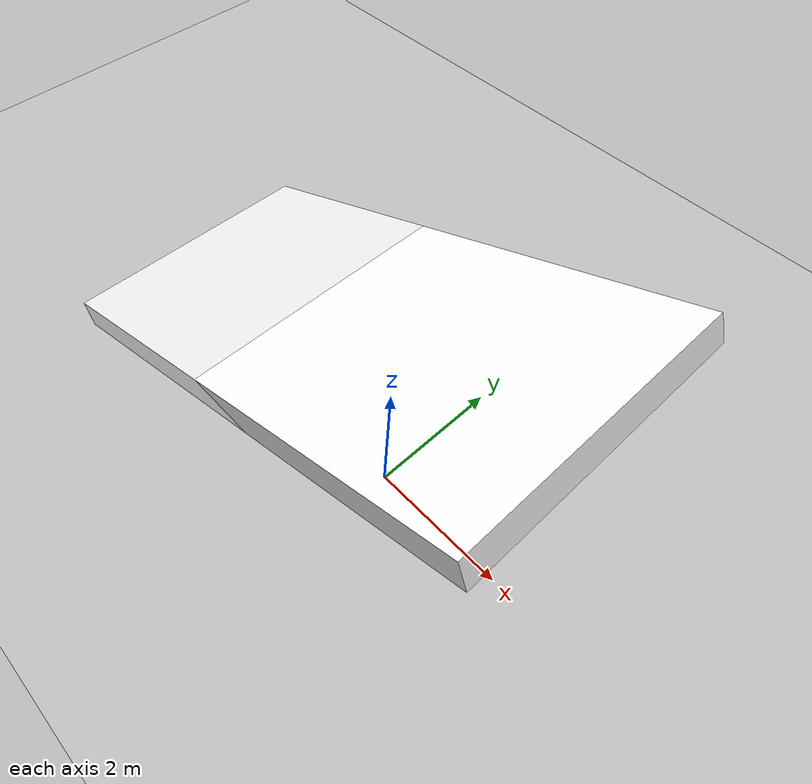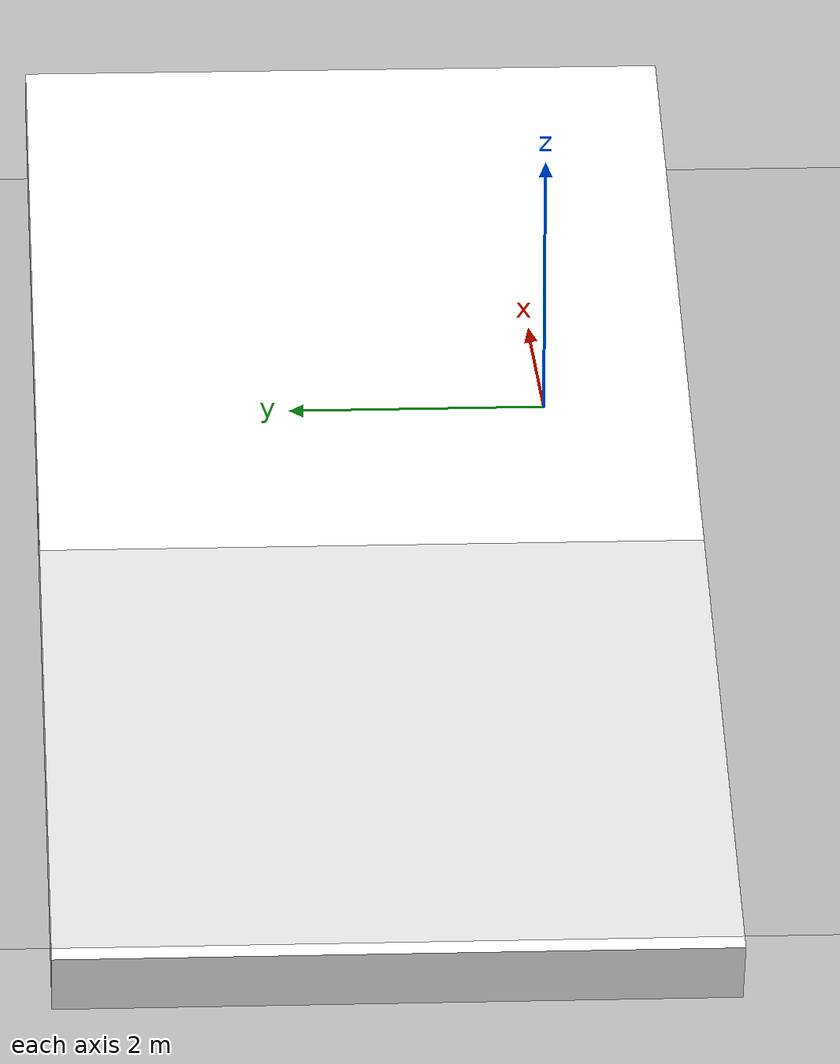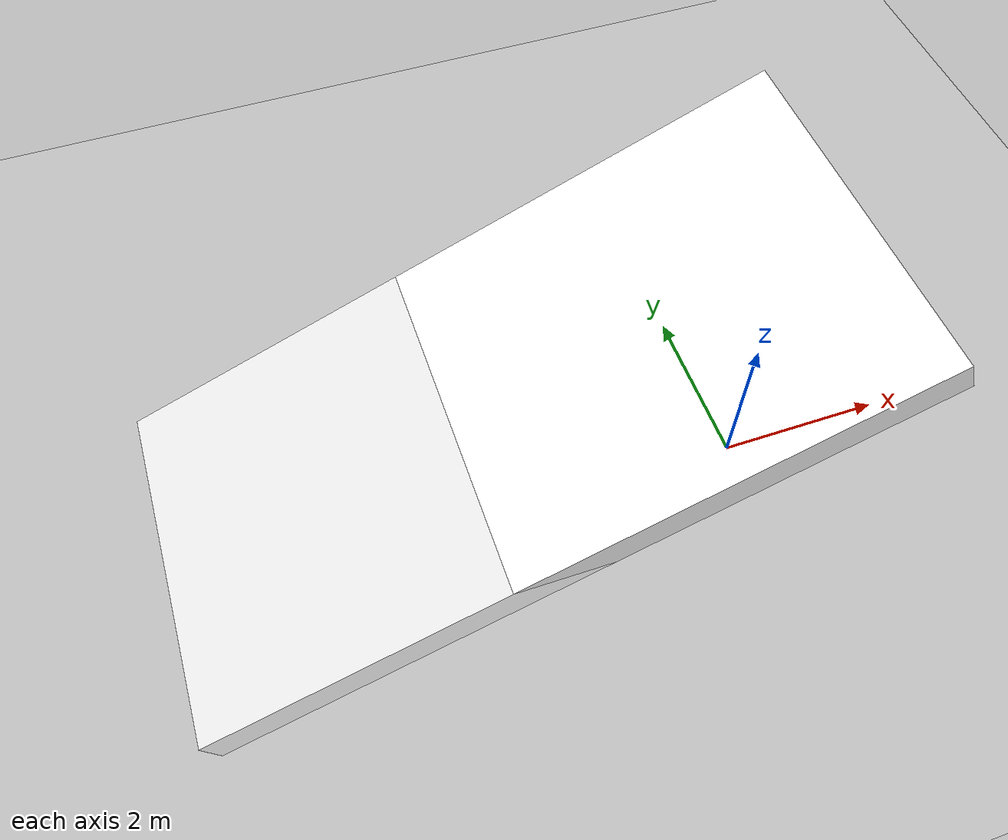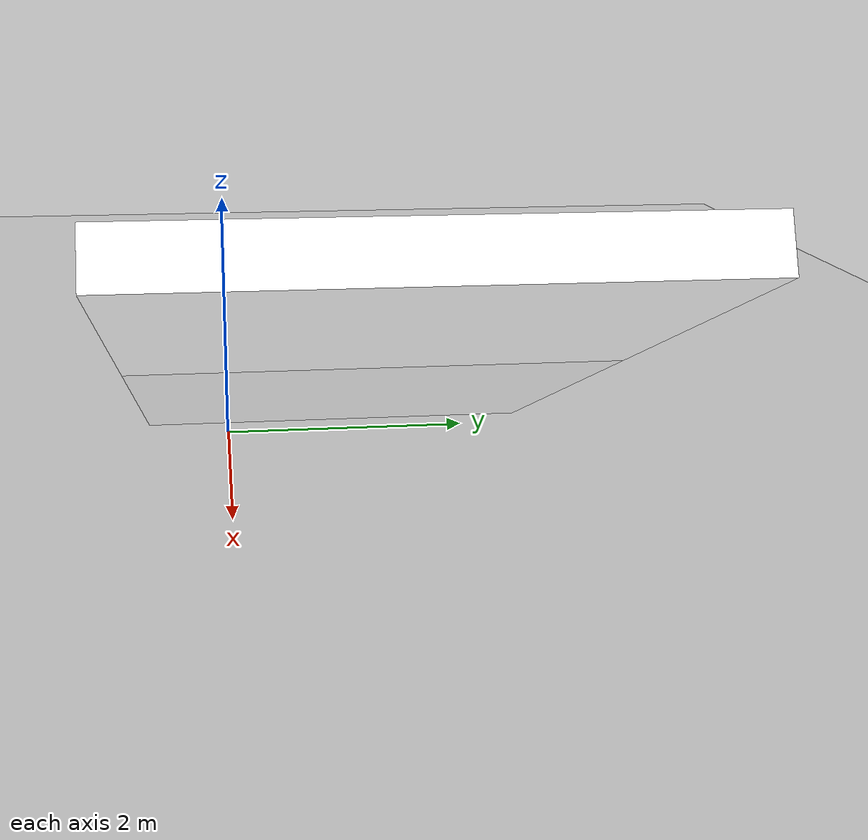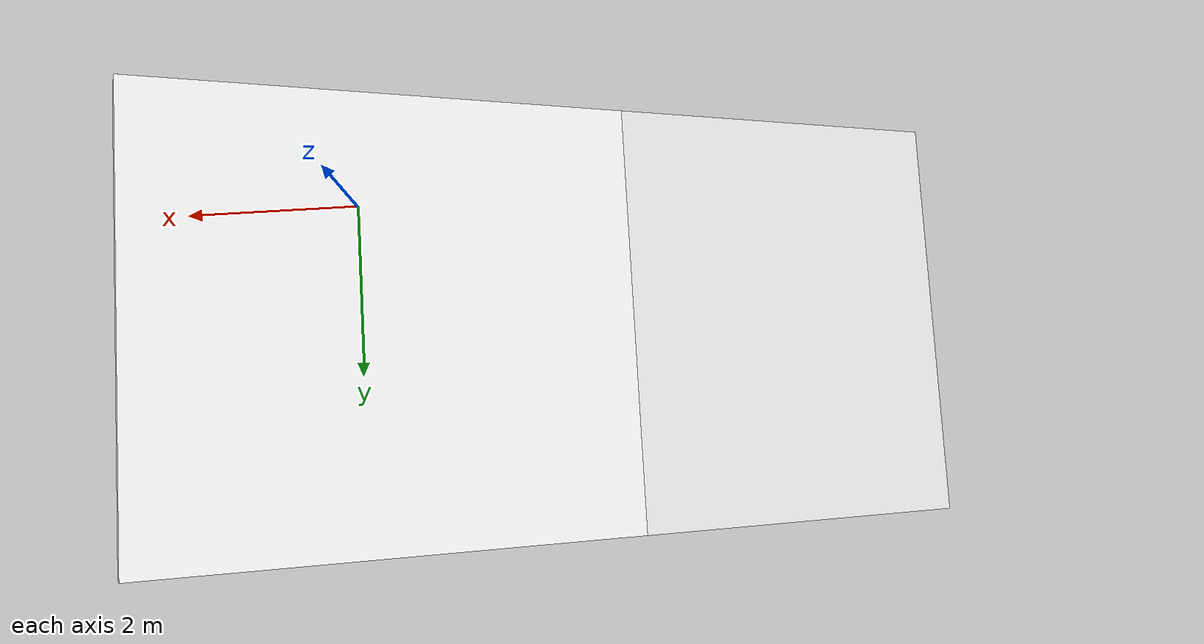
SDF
<?xml version="1.0" ?>
<sdf version="1.9">
  <world name="slope_world">
    <plugin name="gz::sim::systems::Physics" filename="gz-sim-physics-system"/>
    <plugin name="gz::sim::systems::UserCommands" filename="gz-sim-user-commands-system"/>
    <plugin name="gz::sim::systems::SceneBroadcaster" filename="gz-sim-scene-broadcaster-system"/>

    <model name="ground_plane">
      <static>true</static>
      <link name="link">
        <collision name="collision">
          <geometry><plane><normal>0 0 1</normal><size>100 100</size></plane></geometry>
        </collision>
        <visual name="visual">
          <geometry><plane><normal>0 0 1</normal><size>100 100</size></plane></geometry>
        </visual>
      </link>
    </model>

    <model name="slope_block">
      <static>true</static>
      <pose>-2.5 1.5 0 0 -0.4 0</pose>
      <link name="link">
        <collision name="collision">
          <geometry><box><size>10 5 0.5</size></box></geometry>
          <surface>
            <friction>
              <ode>
                <mu>40.0</mu>   <mu2>40.0</mu2> </ode>
            </friction>
          </surface>
        </collision>
        <visual name="visual">
          <geometry><box><size>10 5 0.5</size></box></geometry>
          <material>
            <ambient>1 1 1 1</ambient>
            <diffuse>1 1 1 1</diffuse>
          </material>
        </visual>
      </link>
    </model>
  </world>
</sdf>
